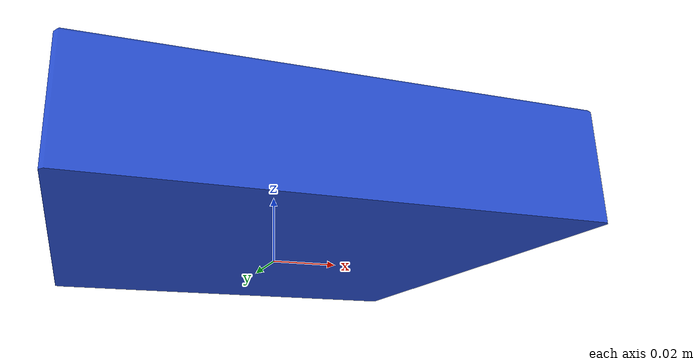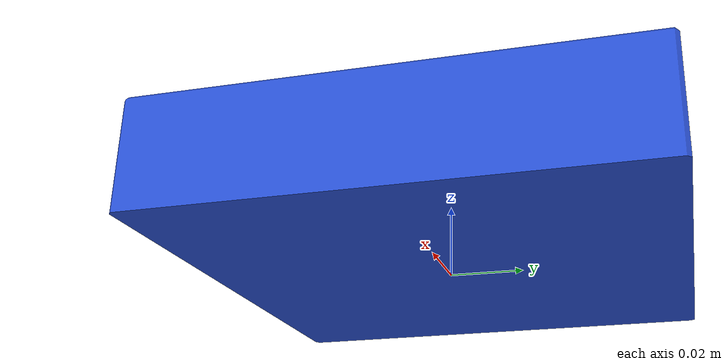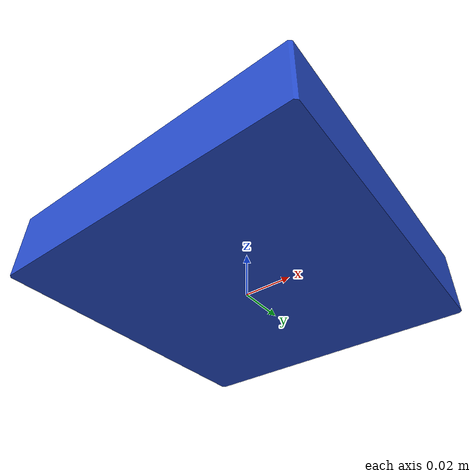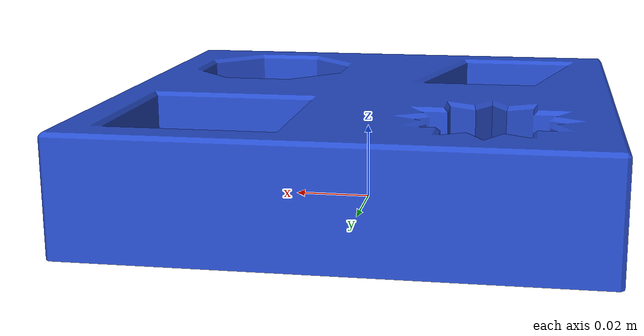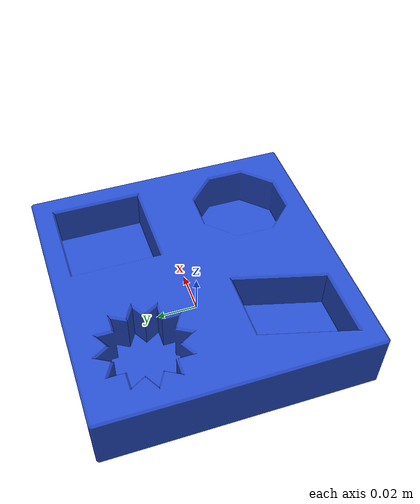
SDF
<?xml version="1.0"?>
<sdf version="1.4">
  <model name="blueBox">
    <static>false</static>
    <link name="link">
      <pose>0 0 0 0 0 0</pose>
      <inertial>
        <pose>-1.610472 0.122405 13.578431 0 0 0</pose>
        <mass>1.0</mass>
        <inertia>
          <ixx>601094080.000000</ixx>
          <ixy>16086886.000000</ixy>
          <ixz>4086380.250000</ixz>
          <iyy>602592064.000000</iyy>
          <iyz>-300132.343750</iyz>
          <izz>1142417664</izz>
        </inertia>
      </inertial>

      <visual name="visual">
        <geometry>
          <mesh>
            <uri>model://blueBox/meshes/Aufnahme_Quadratisch.stl</uri>
            <scale>0.001 0.001 0.001</scale>
          </mesh>
        </geometry>
        <material>
          <script>
            <uri>file://media/materials/scripts/gazebo.material</uri>
            <name>Gazebo/Blue</name>
          </script>
        </material>
      </visual>

      <collision name="collision">
        <geometry>
          <mesh>
            <uri>model://blueBox/meshes/Aufnahme_Quadratisch.stl</uri>
            <scale>0.001 0.001 0.001</scale>
          </mesh>
        </geometry>
      </collision>
    </link>
  </model>
</sdf>
